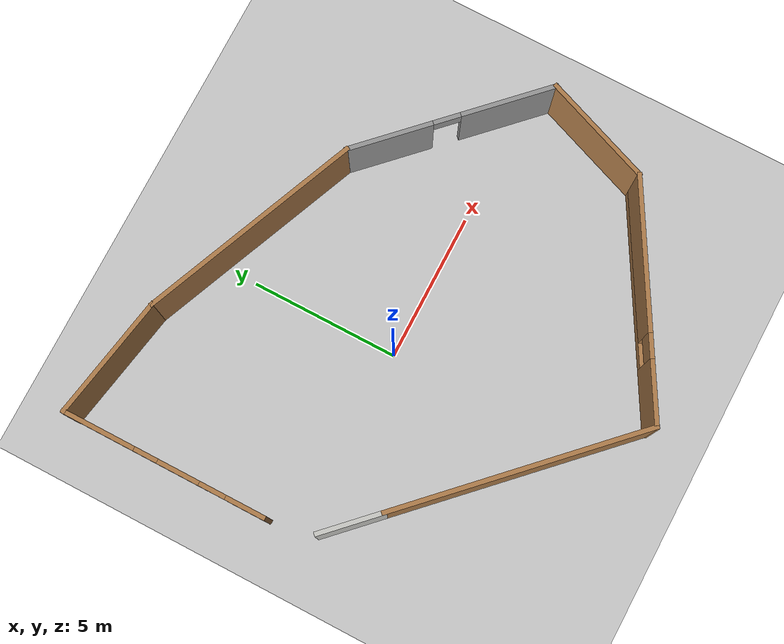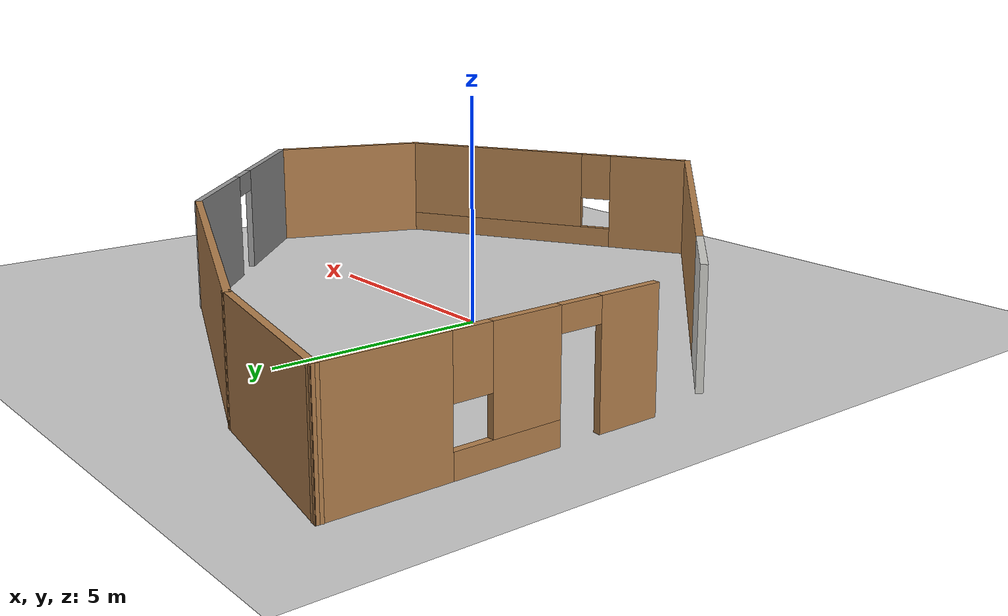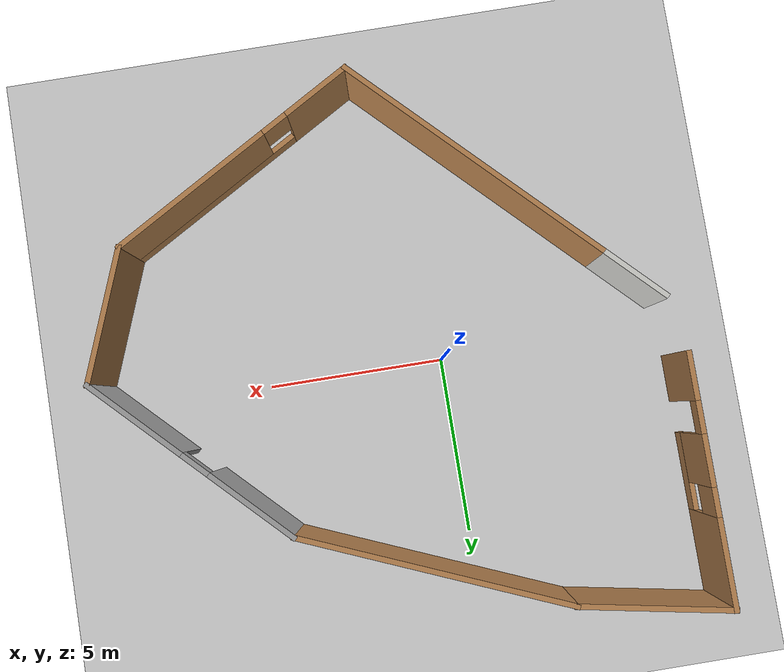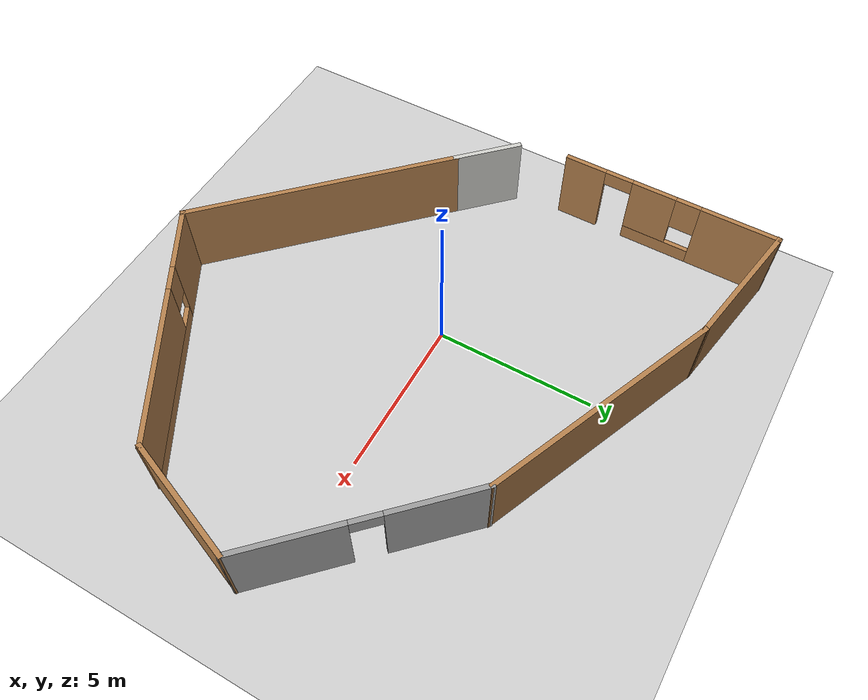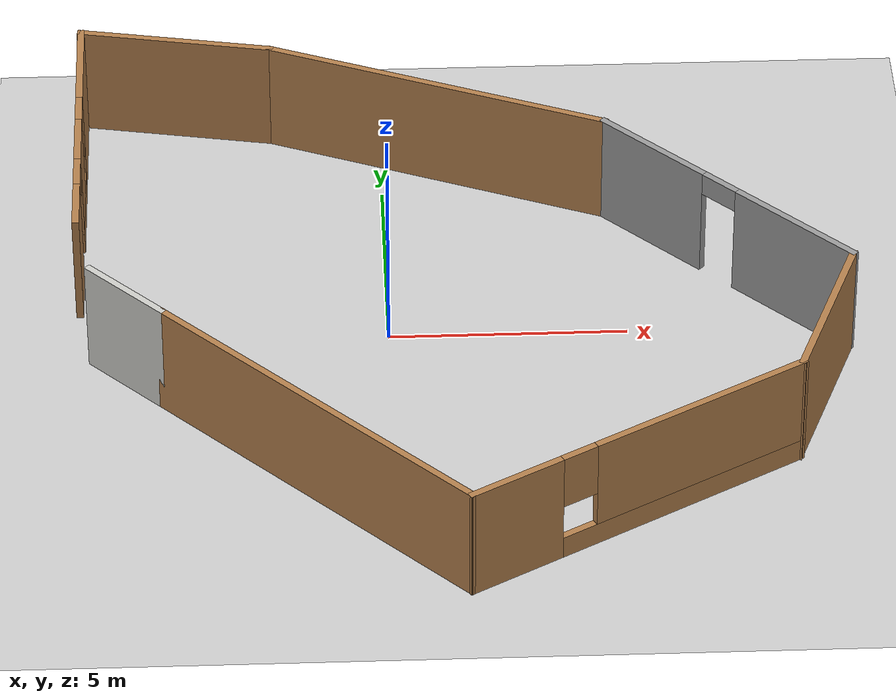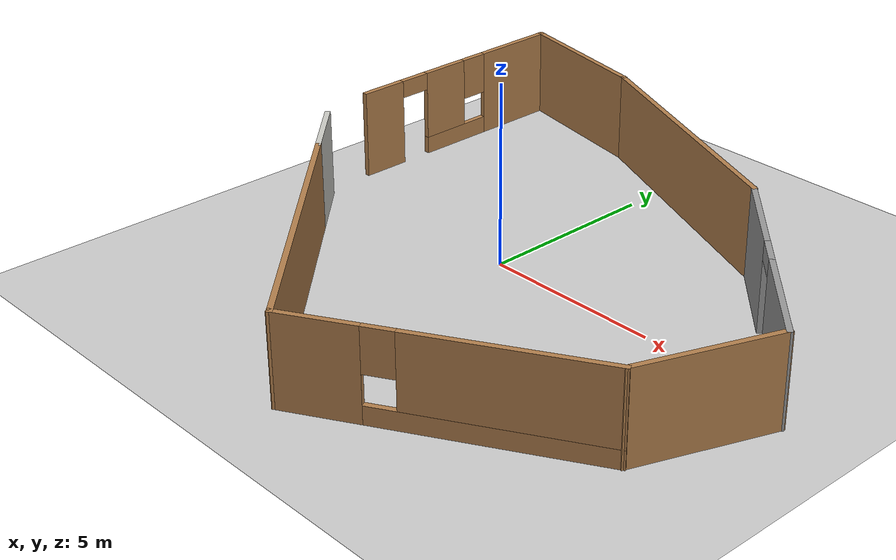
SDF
<sdf version="1.7">
 <world name="default">
  <light name="sun" type="directional">
   <pose>0 0 10 0 -0 0</pose>
   <diffuse>0.8 0.8 0.8 1</diffuse>
   <specular>0.2 0.2 0.2 1</specular>
   <attenuation>
    <range>1000</range>
    <constant>0.9</constant>
    <linear>0.01</linear>
    <quadratic>0.001</quadratic>
   </attenuation>
   <direction>-0.5 0.1 -0.9</direction>
   <spot><inner_angle>0</inner_angle><outer_angle>0</outer_angle><falloff>0</falloff></spot>
  </light>
  <model name="ground_plane">
   <static>1</static>
   <link name="link">
    <collision name="collision">
     <geometry><plane><normal>0 0 1</normal><size>100 100</size></plane></geometry>
     <surface>
      <contact><collide_bitmask>65535</collide_bitmask></contact>
      <friction><ode><mu>100</mu><mu2>50</mu2></ode></friction>
     </surface>
    </collision>
    <visual name="visual">
     <cast_shadows>0</cast_shadows>
     <geometry><plane><normal>0 0 1</normal><size>100 100</size></plane></geometry>
     <material>
      <script><uri>file://media/materials/scripts/gazebo.material</uri><name>Gazebo/Grey</name></script>
     </material>
    </visual>
   </link>
  </model>
  <gravity>0 0 -9.8</gravity>
  <magnetic_field>6e-06 2.3e-05 -4.2e-05</magnetic_field>
  <atmosphere type="adiabatic"/>
  <physics type="ode">
   <max_step_size>0.001</max_step_size>
   <real_time_factor>1</real_time_factor>
   <real_time_update_rate>1000</real_time_update_rate>
  </physics>
  <scene><ambient>0.4 0.4 0.4 1</ambient><background>0.7 0.7 0.7 1</background><shadows>1</shadows></scene>
  <audio><device>default</device></audio>
  <spherical_coordinates>
   <surface_model>EARTH_WGS84</surface_model>
   <latitude_deg>0</latitude_deg>
   <longitude_deg>0</longitude_deg>
   <elevation>0</elevation>
   <heading_deg>0</heading_deg>
  </spherical_coordinates>
  <model name="my_building">
   <pose>1.56867 -0.193572 0 0 -0 0</pose>
   <link name="Wall_10">
    <collision name="Wall_10_Collision">
     <geometry><box><size>4.31982 0.15 2.5</size></box></geometry>
     <pose>0 0 1.25 0 -0 0</pose>
    </collision>
    <visual name="Wall_10_Visual">
     <pose>0 0 1.25 0 -0 0</pose>
     <geometry><box><size>4.31982 0.15 2.5</size></box></geometry>
     <material>
      <script><uri>file://media/materials/scripts/gazebo.material</uri><name>Gazebo/Wood</name></script>
      <ambient>1 1 1 1</ambient>
     </material>
     <meta><layer>0</layer></meta>
    </visual>
    <pose>-5.97439 7.65132 0 0 -0 -0.184447</pose>
   </link>
   <link name="Wall_13">
    <pose>-8.02393 4.6087 0 0 -0 -1.5708</pose>
    <visual name="Wall_13_Visual_0">
     <pose>-2.24246 0 1.25 0 -0 0</pose>
     <geometry><box><size>2.51508 0.15 2.5</size></box></geometry>
     <material>
      <script><uri>file://media/materials/scripts/gazebo.material</uri><name>Gazebo/Wood</name></script>
      <ambient>1 1 1 1</ambient>
     </material>
     <meta><layer>0</layer></meta>
    </visual>
    <collision name="Wall_13_Collision_0">
     <geometry><box><size>2.51508 0.15 2.5</size></box></geometry>
     <pose>-2.24246 0 1.25 0 -0 0</pose>
    </collision>
    <visual name="Wall_13_Visual_1">
     <pose>2.82237 0 1.25 0 -0 0</pose>
     <geometry><box><size>1.35525 0.15 2.5</size></box></geometry>
     <material>
      <script><uri>file://media/materials/scripts/gazebo.material</uri><name>Gazebo/Wood</name></script>
      <ambient>1 1 1 1</ambient>
     </material>
     <meta><layer>0</layer></meta>
    </visual>
    <collision name="Wall_13_Collision_1">
     <geometry><box><size>1.35525 0.15 2.5</size></box></geometry>
     <pose>2.82237 0 1.25 0 -0 0</pose>
    </collision>
    <visual name="Wall_13_Visual_2">
     <pose>0.129912 0 0.25 0 -0 0</pose>
     <geometry><box><size>2.22967 0.15 0.5</size></box></geometry>
     <material>
      <script><uri>file://media/materials/scripts/gazebo.material</uri><name>Gazebo/Wood</name></script>
      <ambient>1 1 1 1</ambient>
     </material>
     <meta><layer>0</layer></meta>
    </visual>
    <collision name="Wall_13_Collision_2">
     <geometry><box><size>2.22967 0.15 0.5</size></box></geometry>
     <pose>0.129912 0 0.25 0 -0 0</pose>
    </collision>
    <visual name="Wall_13_Visual_3">
     <pose>0.529912 0 1.5 0 -0 0</pose>
     <geometry><box><size>1.42967 0.15 2</size></box></geometry>
     <material>
      <script><uri>file://media/materials/scripts/gazebo.material</uri><name>Gazebo/Wood</name></script>
      <ambient>1 1 1 1</ambient>
     </material>
     <meta><layer>0</layer></meta>
    </visual>
    <collision name="Wall_13_Collision_3">
     <geometry><box><size>1.42967 0.15 2</size></box></geometry>
     <pose>0.529912 0 1.5 0 -0 0</pose>
    </collision>
    <visual name="Wall_13_Visual_4">
     <pose>-0.584924 0 1.9 0 -0 0</pose>
     <geometry><box><size>0.8 0.15 1.2</size></box></geometry>
     <material>
      <script><uri>file://media/materials/scripts/gazebo.material</uri><name>Gazebo/Wood</name></script>
      <ambient>1 1 1 1</ambient>
     </material>
     <meta><layer>0</layer></meta>
    </visual>
    <collision name="Wall_13_Collision_4">
     <geometry><box><size>0.8 0.15 1.2</size></box></geometry>
     <pose>-0.584924 0 1.9 0 -0 0</pose>
    </collision>
    <visual name="Wall_13_Visual_5">
     <pose>1.69475 0 2.25 0 -0 0</pose>
     <geometry><box><size>0.9 0.15 0.5</size></box></geometry>
     <material>
      <script><uri>file://media/materials/scripts/gazebo.material</uri><name>Gazebo/Wood</name></script>
      <ambient>1 1 1 1</ambient>
     </material>
     <meta><layer>0</layer></meta>
    </visual>
    <collision name="Wall_13_Collision_5">
     <geometry><box><size>0.9 0.15 0.5</size></box></geometry>
     <pose>1.69475 0 2.25 0 -0 0</pose>
    </collision>
   </link>
   <link name="Wall_16">
    <collision name="Wall_16_Collision">
     <geometry><box><size>8.75 0.15 2.5</size></box></geometry>
     <pose>0 0 1.25 0 -0 0</pose>
    </collision>
    <visual name="Wall_16_Visual">
     <pose>0 0 1.25 0 -0 0</pose>
     <geometry><box><size>8.75 0.15 2.5</size></box></geometry>
     <material>
      <script><uri>file://media/materials/scripts/gazebo.material</uri><name>Gazebo/Wood</name></script>
      <ambient>1 1 1 1</ambient>
     </material>
     <meta><layer>0</layer></meta>
    </visual>
    <pose>-3.18337 -4.97455 0 0 -0 -0.785398</pose>
   </link>
   <link name="Wall_17">
    <pose>3.25634 -6.05261 0 0 -0 0.523599</pose>
    <visual name="Wall_17_Visual_0">
     <pose>-2.92456 0 1.25 0 -0 0</pose>
     <geometry><box><size>2.15089 0.15 2.5</size></box></geometry>
     <material>
      <script><uri>file://media/materials/scripts/gazebo.material</uri><name>Gazebo/Wood</name></script>
      <ambient>1 1 1 1</ambient>
     </material>
     <meta><layer>0</layer></meta>
    </visual>
    <collision name="Wall_17_Collision_0">
     <geometry><box><size>2.15089 0.15 2.5</size></box></geometry>
     <pose>-2.92456 0 1.25 0 -0 0</pose>
    </collision>
    <visual name="Wall_17_Visual_1">
     <pose>1.07544 0 0.25 0 -0 0</pose>
     <geometry><box><size>5.84912 0.15 0.5</size></box></geometry>
     <material>
      <script><uri>file://media/materials/scripts/gazebo.material</uri><name>Gazebo/Wood</name></script>
      <ambient>1 1 1 1</ambient>
     </material>
     <meta><layer>0</layer></meta>
    </visual>
    <collision name="Wall_17_Collision_1">
     <geometry><box><size>5.84912 0.15 0.5</size></box></geometry>
     <pose>1.07544 0 0.25 0 -0 0</pose>
    </collision>
    <visual name="Wall_17_Visual_2">
     <pose>1.47544 0 1.5 0 -0 0</pose>
     <geometry><box><size>5.04911 0.15 2</size></box></geometry>
     <material>
      <script><uri>file://media/materials/scripts/gazebo.material</uri><name>Gazebo/Wood</name></script>
      <ambient>1 1 1 1</ambient>
     </material>
     <meta><layer>0</layer></meta>
    </visual>
    <collision name="Wall_17_Collision_2">
     <geometry><box><size>5.04911 0.15 2</size></box></geometry>
     <pose>1.47544 0 1.5 0 -0 0</pose>
    </collision>
    <visual name="Wall_17_Visual_3">
     <pose>-1.44911 0 1.9 0 -0 0</pose>
     <geometry><box><size>0.8 0.15 1.2</size></box></geometry>
     <material>
      <script><uri>file://media/materials/scripts/gazebo.material</uri><name>Gazebo/Wood</name></script>
      <ambient>1 1 1 1</ambient>
     </material>
     <meta><layer>0</layer></meta>
    </visual>
    <collision name="Wall_17_Collision_3">
     <geometry><box><size>0.8 0.15 1.2</size></box></geometry>
     <pose>-1.44911 0 1.9 0 -0 0</pose>
    </collision>
   </link>
   <link name="Wall_18">
    <collision name="Wall_18_Collision">
     <geometry><box><size>3.95597 0.15 2.5</size></box></geometry>
     <pose>0 0 1.25 0 -0 0</pose>
    </collision>
    <visual name="Wall_18_Visual">
     <pose>0 0 1.25 0 -0 0</pose>
     <geometry><box><size>3.95597 0.15 2.5</size></box></geometry>
     <material>
      <script><uri>file://media/materials/scripts/gazebo.material</uri><name>Gazebo/Wood</name></script>
      <ambient>1 1 1 1</ambient>
     </material>
     <meta><layer>0</layer></meta>
    </visual>
    <pose>7.33042 -2.31084 0 0 -0 1.20823</pose>
   </link>
   <link name="Wall_20">
    <collision name="Wall_20_Collision">
     <geometry><box><size>2.25 0.15 2.5</size></box></geometry>
     <pose>0 0 1.25 0 -0 0</pose>
    </collision>
    <visual name="Wall_20_Visual">
     <pose>0 0 1.25 0 -0 0</pose>
     <geometry><box><size>2.25 0.15 2.5</size></box></geometry>
     <material>
      <script><uri>file://media/materials/scripts/gazebo.material</uri><name>Gazebo/CeilingTiled</name></script>
      <ambient>1 1 1 1</ambient>
     </material>
     <meta><layer>0</layer></meta>
    </visual>
    <pose>-6.96639 -1.19153 0 0 -0 2.35619</pose>
   </link>
   <link name="Wall_6">
    <pose>5.58351 1.89027 0 0 -0 2.35619</pose>
    <visual name="Wall_6_Visual_0">
     <pose>-1.89429 0 1.25 0 -0 0</pose>
     <geometry><box><size>3.21141 0.15 2.5</size></box></geometry>
     <material>
      <script><uri>file://media/materials/scripts/gazebo.material</uri><name>Gazebo/Grey</name></script>
      <ambient>1 1 1 1</ambient>
     </material>
     <meta><layer>0</layer></meta>
    </visual>
    <collision name="Wall_6_Collision_0">
     <geometry><box><size>3.21141 0.15 2.5</size></box></geometry>
     <pose>-1.89429 0 1.25 0 -0 0</pose>
    </collision>
    <visual name="Wall_6_Visual_1">
     <pose>2.05571 0 1.25 0 -0 0</pose>
     <geometry><box><size>2.88859 0.15 2.5</size></box></geometry>
     <material>
      <script><uri>file://media/materials/scripts/gazebo.material</uri><name>Gazebo/Grey</name></script>
      <ambient>1 1 1 1</ambient>
     </material>
     <meta><layer>0</layer></meta>
    </visual>
    <collision name="Wall_6_Collision_1">
     <geometry><box><size>2.88859 0.15 2.5</size></box></geometry>
     <pose>2.05571 0 1.25 0 -0 0</pose>
    </collision>
    <visual name="Wall_6_Visual_2">
     <pose>0.161411 0 2.25 0 -0 0</pose>
     <geometry><box><size>0.9 0.15 0.5</size></box></geometry>
     <material>
      <script><uri>file://media/materials/scripts/gazebo.material</uri><name>Gazebo/Grey</name></script>
      <ambient>1 1 1 1</ambient>
     </material>
     <meta><layer>0</layer></meta>
    </visual>
    <collision name="Wall_6_Collision_2">
     <geometry><box><size>0.9 0.15 0.5</size></box></geometry>
     <pose>0.161411 0 2.25 0 -0 0</pose>
    </collision>
   </link>
   <link name="Wall_8">
    <collision name="Wall_8_Collision">
     <geometry><box><size>7.82863 0.15 2.5</size></box></geometry>
     <pose>0 0 1.25 0 -0 0</pose>
    </collision>
    <visual name="Wall_8_Visual">
     <pose>0 0 1.25 0 -0 0</pose>
     <geometry><box><size>7.82863 0.15 2.5</size></box></geometry>
     <material>
      <script><uri>file://media/materials/scripts/gazebo.material</uri><name>Gazebo/Wood</name></script>
      <ambient>1 1 1 1</ambient>
     </material>
     <meta><layer>0</layer></meta>
    </visual>
    <pose>-0.381587 5.79053 0 0 -0 -0.395286</pose>
   </link>
   <static>1</static>
  </model>
 </world>
</sdf>
